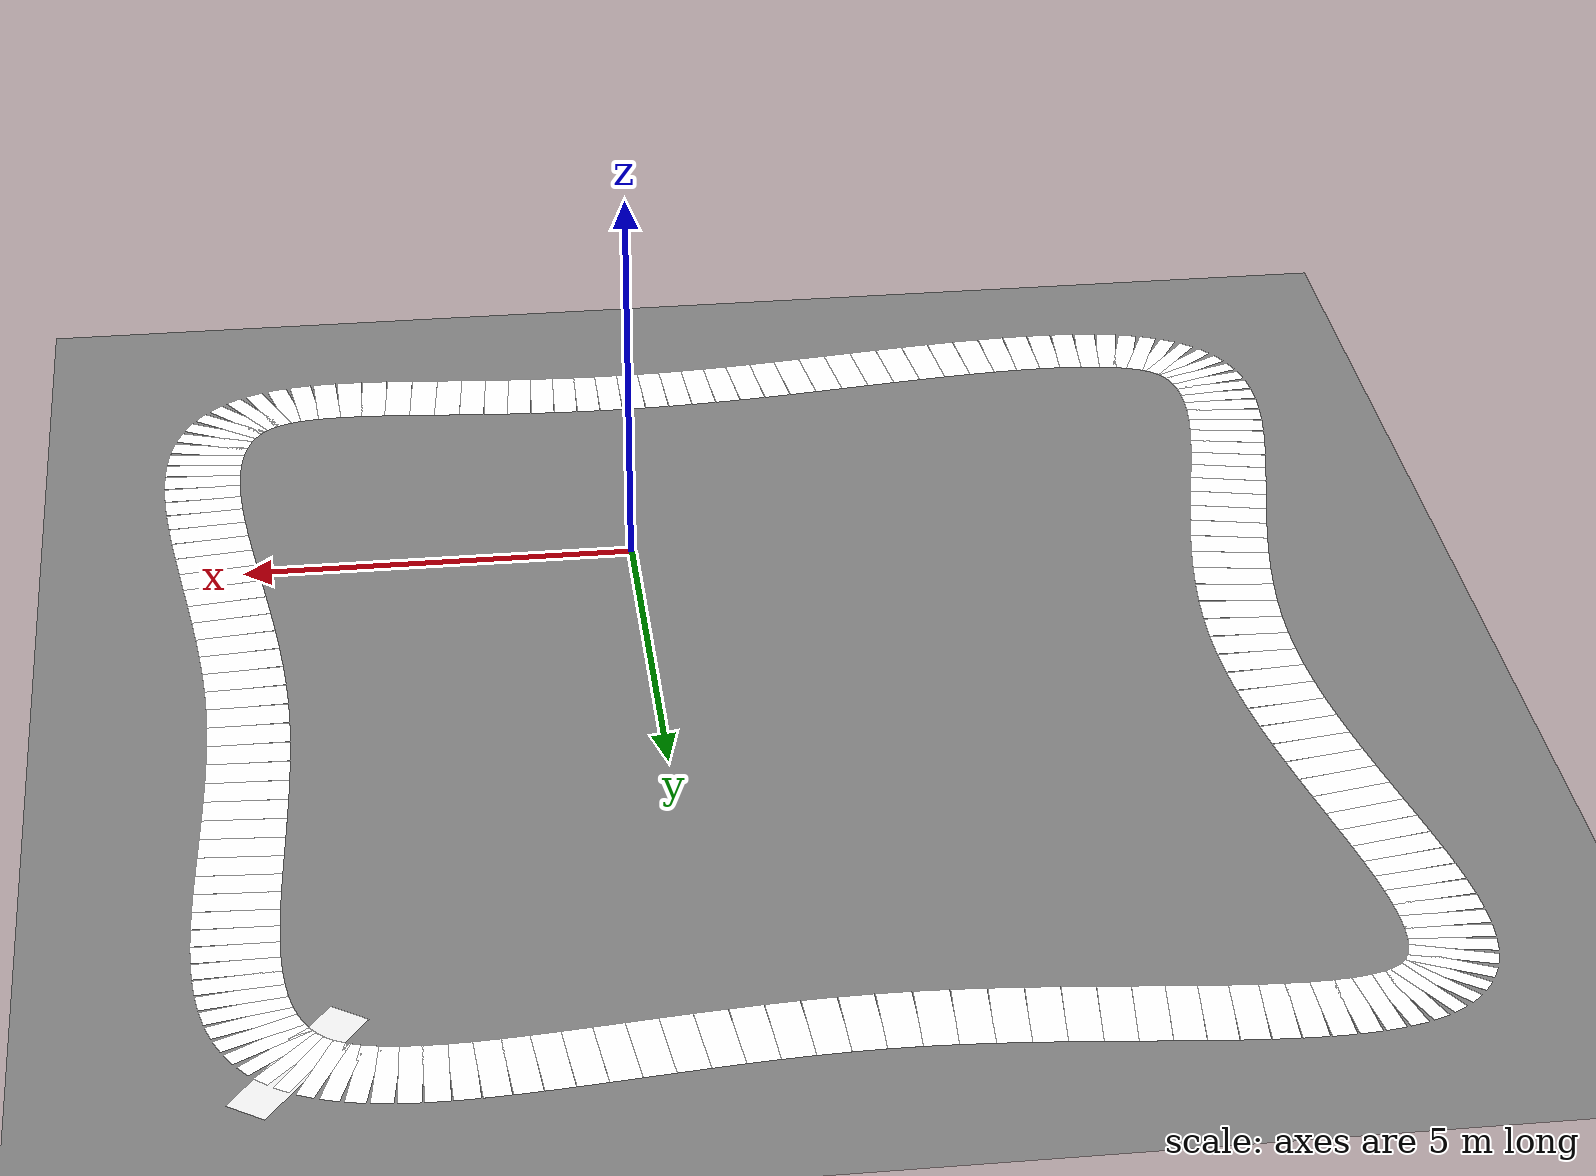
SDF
<sdf version="1.7">
 <world name="default">
  <gravity>0 0 -9.8</gravity>
  <magnetic_field>6e-06 2.3e-05 -4.2e-05</magnetic_field>
  <atmosphere type="adiabatic"/>
  <physics default="0" name="default_physics" type="ode">
   <max_step_size>0.001</max_step_size>
   <real_time_factor>1</real_time_factor>
   <real_time_update_rate>1000</real_time_update_rate>
  </physics>
  <plugin filename="gz-sim-physics-system" name="gz::sim::systems::Physics"/>
  <plugin filename="gz-sim-user-commands-system" name="gz::sim::systems::UserCommands"/>
  <plugin filename="gz-sim-scene-broadcaster-system" name="gz::sim::systems::SceneBroadcaster"/>
  <plugin filename="gz-sim-sensors-system" name="gz::sim::systems::Sensors">
   <render_engine>ogre2</render_engine>
  </plugin>
  <plugin filename="gz-sim-imu-system" name="gz::sim::systems::Imu"/>
  <scene>
   <ambient>1 1 1 1</ambient>
   <background>0.7 0.7 0.7 1</background>
   <shadows>0</shadows>
   <grid>true</grid>
   <origin_visual>false</origin_visual>
  </scene>
  <spherical_coordinates>
   <surface_model>EARTH_WGS84</surface_model>
   <latitude_deg>0</latitude_deg>
   <longitude_deg>0</longitude_deg>
   <elevation>0</elevation>
   <heading_deg>0</heading_deg>
  </spherical_coordinates>
  <light name="sun" type="directional">
   <pose>0 0 10 0 -0 0</pose>
   <diffuse>1 1 1 1</diffuse>
   <specular>0.2 0.2 0.2 1</specular>
   <attenuation>
    <range>1000</range>
    <constant>0.9</constant>
    <linear>0.01</linear>
    <quadratic>0.001</quadratic>
   </attenuation>
   <direction>-0.5 0.1 -0.9</direction>
   <spot><inner_angle>0</inner_angle><outer_angle>0</outer_angle><falloff>0</falloff></spot>
  </light>
  <model name="ground_plane">
   <static>1</static>
   <link name="link">
    <collision name="collision">
     <geometry><plane><normal>0 0 1</normal><size>100 100</size></plane></geometry>
     <surface><friction><ode><mu>1.0</mu><mu2>1.0</mu2></ode></friction></surface>
    </collision>
    <visual name="visual">
     <cast_shadows>0</cast_shadows>
     <geometry><plane><normal>0 0 1</normal><size>100 100</size></plane></geometry>
     <material>
      <ambient>0.5 0.5 0.5 1</ambient>
      <diffuse>0.5 0.5 0.5 1</diffuse>
      <specular>0.1 0.1 0.1 1</specular>
     </material>
    </visual>
   </link>
  </model>
  <include>
   <uri>model://world_camera</uri>
   <name>cam_front</name>
   <pose>9.054021 10.588752 1.915707 0 0 -2.579030</pose>
  </include>
  <include>
   <uri>model://world_camera</uri>
   <name>cam_back</name>
   <pose>9.314169 -4.133807 1.780432 0 0 2.637201</pose>
  </include>
  <include>
   <uri>model://world_camera</uri>
   <name>cam_left</name>
   <pose>-11.247843 -5.598201 1.780432 0 0.108940 0.589042</pose>
  </include>
  <include>
   <uri>model://world_camera</uri>
   <name>cam_right</name>
   <pose>-11.125655 10.631718 1.457388 -0.004173 0.062735 -0.556765</pose>
  </include>
  <include>
   <uri>model://world_camera</uri>
   <name>cam_top</name>
   <pose>-5.640081 3.112618 14.053880 1.565592 1.417189 -0.005144</pose>
  </include>
  <include><uri>model://road_model</uri></include>
  <include><uri>model://race_end</uri><name>race_end</name></include>
 </world>
</sdf>

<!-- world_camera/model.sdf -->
<sdf version="1.6">
  <model name="world_camera">
    <static>true</static>

    <link name="camera_link">
      <pose>0 0 0 0 0 0</pose>

      <sensor name="camera_sensor" type="camera">
        <update_rate>20</update_rate>
        <always_on>true</always_on>
        <visualize>true</visualize>
        <topic>world_cam/image_raw</topic>

        <camera>
          <horizontal_fov>1.3962634</horizontal_fov>
          <image>
            <width>640</width>
            <height>480</height>
            <format>R8G8B8</format>
          </image>
          <clip>
            <near>0.1</near>
            <far>100</far>
          </clip>
        </camera>
      </sensor>
    </link>
  </model>
</sdf>

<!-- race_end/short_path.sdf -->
<sdf version='1.7'>
  <model name='default'>

    <model name='end_line'>
      <static>1</static>
      <link name='end_line_link'>
        <visual name='end_line_visual'>
          <geometry>
            <box>
              <size>0.5 2 0.00008</size>
            </box>
          </geometry>
          <material>
            <ambient>0.9 0.9 0.9 1</ambient>
              <diffuse>0.95 0.95 0.95 1</diffuse>
              <specular>0.1 0.1 0.1 1</specular>
          </material>
        </visual>
        <collision name='end_line_collision'>
          <geometry>
            <box>
              <size>0.5 2 0.00008</size>
            </box>
          </geometry>
          <max_contacts>10</max_contacts>
          <surface>
            <contact>
              <ode/>
            </contact>
            <bounce/>
            <friction>
              <torsional>
                <ode/>
              </torsional>
              <ode/>
            </friction>
          </surface>
        </collision>
        <self_collide>0</self_collide>
        <enable_wind>0</enable_wind>
        <kinematic>0</kinematic>
      </link>
      <pose>4.5 10.4 0 0 0 -0.6113</pose>
    </model>

</model>
</sdf>
